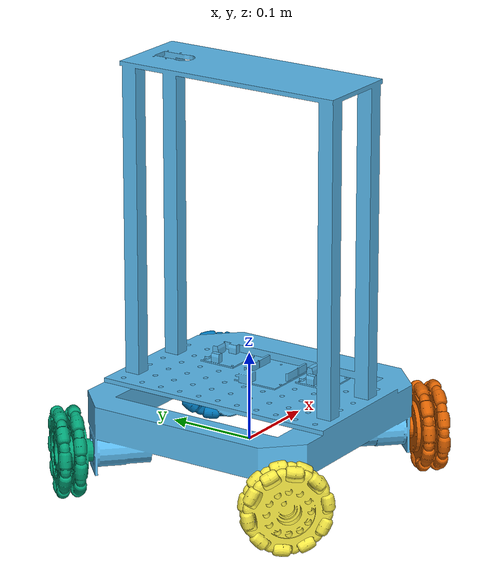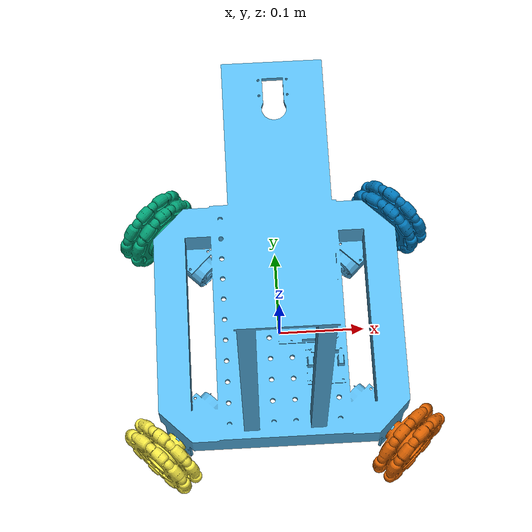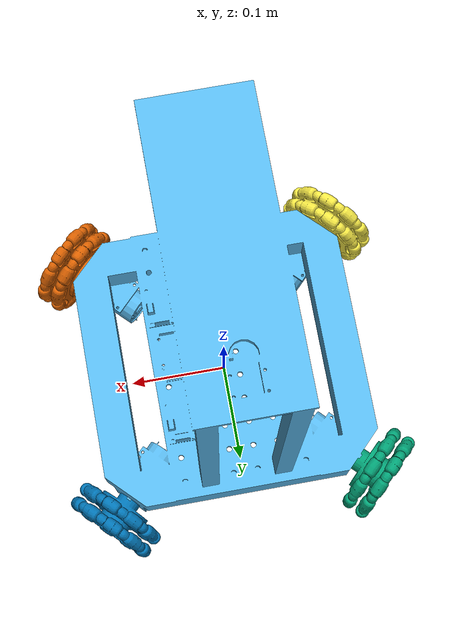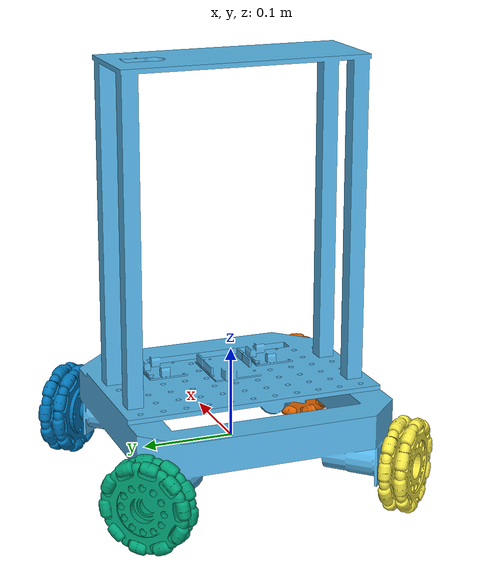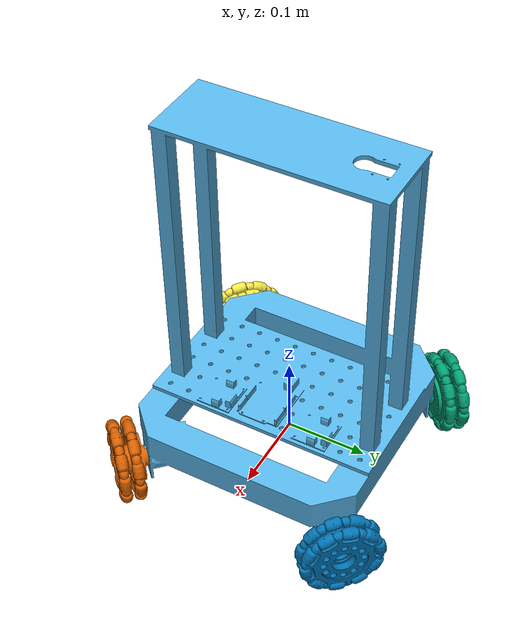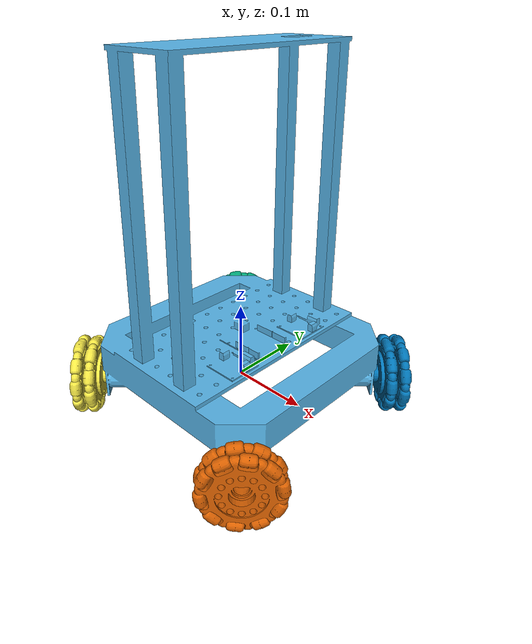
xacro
<?xml version='1.0'?>
<robot name="omnibot" xmlns:xacro="http://www.ros.org/wiki/xacro">

    <xacro:property name="PI" value="3.1415926535897931"/>

    <xacro:include filename="$(find omnibot_description)/models/omnibot/model.gazebo" />

    <!-- Joint to keep the robot up in midair -->

    <!-- Links -->
    <link name="base_link"/>
    <link name="body">
        <inertial>
            <mass value="8"/>
            <origin rpy="0 0 0" xyz="0 0 0"/>
            <inertia ixx="0.198" ixy="0" ixz="0" iyy="0.198" iyz="0" izz="0.13"/>
        </inertial>
        <collision name='collision'>
            <origin rpy="0 0 0" xyz="0 0 0.22"/>
            <geometry>
                <box size="0.25 0.25 0.40"/>
            </geometry>
        </collision>
        <visual name="visual">
            <origin rpy="0 0 0" xyz="0 0 0"/>
            <geometry>
                <mesh filename="package://omnibot_description/meshes/body.stl" scale="0.001 0.001 0.001"/>
            </geometry>
        </visual>
    </link>
    <link name="left_front_wheel">
        <inertial>
            <mass value="1"/>
            <origin rpy="0 1.57 0" xyz="0 0 0"/>
            <inertia ixx="0.075" ixy="0" ixz="0" iyy="0.075" iyz="0" izz="0.3"/>
        </inertial>
        <collision name='collision'>
            <origin rpy="0 1.57 0" xyz="0 0 0"/>
            <geometry>
                <cylinder radius="0.05" length="0.03" />
            </geometry>
        </collision>
        <visual name="visual">
            <origin rpy="0 0 0" xyz="0.05 0 0"/>
            <geometry>
                <mesh filename="package://omnibot_description/meshes/wheel.stl" scale="0.001 0.001 0.001"/>
            </geometry>
        </visual>
    </link>
    <link name="left_back_wheel">
        <inertial>
            <mass value="1"/>
            <origin rpy="0 1.57 0" xyz="0 0 0"/>
            <inertia ixx="0.075" ixy="0" ixz="0" iyy="0.075" iyz="0" izz="0.3"/>
        </inertial>
        <collision name='collision'>
            <origin rpy="0 1.57 0" xyz="0 0 0"/>
            <geometry>
                <cylinder radius="0.05" length="0.03" />
            </geometry>
        </collision>
        <visual name="visual">
            <origin rpy="0  0 0" xyz="0.05 0 0"/>
            <geometry>
                <mesh filename="package://omnibot_description/meshes/wheel.stl" scale="0.001 0.001 0.001"/>
            </geometry>
        </visual>
    </link>
    <link name="right_front_wheel">
        <inertial>
            <mass value="1"/>
            <origin rpy="0 1.57 0" xyz="0 0 0"/>
            <inertia ixx="0.075" ixy="0" ixz="0" iyy="0.075" iyz="0" izz="0.3"/>
        </inertial>
        <collision name='collision'>
            <origin rpy="0 1.57 0" xyz="0 0 0"/>
            <geometry>
                <cylinder radius="0.05" length="0.03" />
            </geometry>
        </collision>
        <visual name="visual">
            <origin rpy="0 0 0" xyz="0.05 0 0"/>
            <geometry>
                <mesh filename="package://omnibot_description/meshes/wheel.stl" scale="0.001 0.001 0.001"/>
            </geometry>
        </visual>
    </link>
    <link name="right_back_wheel">
        <inertial>
            <mass value="1"/>
            <origin rpy="0 1.57 0" xyz="0 0 0"/>
            <inertia ixx="0.075" ixy="0" ixz="0" iyy="0.075" iyz="0" izz="0.3"/>
        </inertial>
        <collision name='collision'>
            <origin rpy="0 1.57 0" xyz="0 0 0"/>
            <geometry>
                <cylinder radius="0.05" length="0.03" />
            </geometry>
        </collision>
        <visual name="visual">
            <origin rpy="0 0 0" xyz="0.05 0 0"/>
            <geometry>
                <mesh filename="package://omnibot_description/meshes/wheel.stl" scale="0.001 0.001 0.001"/>
            </geometry>
        </visual>
    </link>
    <link name="camera" />

    <!-- Joints -->
    <joint name="base_link_body" type="fixed">
        <parent link="base_link"/>
        <child link="body"/>
        <origin rpy="0 0 0" xyz="0 0 0"/>
        <axis xyz="1 0 0"/>
    </joint>
    <joint type="revolute" name="left_back_wheel_hinge">
        <child link="left_back_wheel"/>
        <parent link="body"/>
        <origin rpy="0 0 0.785398" xyz="-0.15 -0.15 0"/>
        <axis xyz="-1 0 0"/>
        <dynamics damping="0.0" friction="10.0" />
        <limit effort="1000"  lower="-1e10" upper="1e10" velocity="5"/>
    </joint>
    <joint type="revolute" name="right_front_wheel_hinge">
        <child link="right_front_wheel"/>
        <parent link="body"/>
        <origin rpy="0 0 3.92699" xyz="0.15 0.15 0"/>
        <axis xyz="1 0 0"/>
        <dynamics damping="0.0" friction="10.0" />
        <limit effort="1000"  lower="-1e10" upper="1e10" velocity="5"/>
    </joint>
    <joint type="revolute" name="right_back_wheel_hinge">
        <child link="right_back_wheel"/>
        <parent link="body"/>
        <origin rpy="0 0 2.35619" xyz="0.15 -0.15 0"/>
        <axis xyz="1 0 0"/>
        <dynamics damping="0.0" friction="10.0" />
        <limit effort="1000"  lower="-1e10" upper="1e10" velocity="5"/>
    </joint>
    <joint type="revolute" name="left_front_wheel_hinge">
        <child link="left_front_wheel"/>
        <parent link="body"/>
        <origin rpy="0 0 5.49779" xyz="-0.15 0.15 0"/>
        <axis xyz="-1 0 0"/>
        <dynamics damping="0.0" friction="10.0" />
        <limit effort="1000"  lower="-1e10" upper="1e10" velocity="5"/>
    </joint>
    <joint name="camera_joint" type="fixed">
        <parent link="base_link" />
        <child link="camera" />
        <origin rpy="0 0 1.57" xyz="0 0.12 0.45"/>
    </joint>

    <!-- Transmission -->
    <transmission name="left_front_wheel_hinge">
        <type>transmission_interface/SimpleTransmission</type>
        <joint name="left_front_wheel_hinge">
            <hardwareInterface>hardware_interface/EffortJointInterface</hardwareInterface>
        </joint>
        <actuator name="motor1">
            <hardwareInterface>hardware_interface/EffortJointInterface</hardwareInterface>
            <mechanicalReduction>1</mechanicalReduction>
        </actuator>
    </transmission>
    <transmission name="right_front_wheel_hinge">
        <type>transmission_interface/SimpleTransmission</type>
        <joint name="right_front_wheel_hinge">
            <hardwareInterface>hardware_interface/EffortJointInterface</hardwareInterface>
        </joint>
        <actuator name="motor2">
            <hardwareInterface>hardware_interface/EffortJointInterface</hardwareInterface>
            <mechanicalReduction>1</mechanicalReduction>
        </actuator>
    </transmission>
    <transmission name="left_back_wheel_hinge">
        <type>transmission_interface/SimpleTransmission</type>
        <joint name="left_back_wheel_hinge">
            <hardwareInterface>hardware_interface/EffortJointInterface</hardwareInterface>
        </joint>
        <actuator name="motor3">
            <hardwareInterface>hardware_interface/EffortJointInterface</hardwareInterface>
            <mechanicalReduction>1</mechanicalReduction>
        </actuator>
    </transmission>
    <transmission name="right_back_wheel_hinge">
        <type>transmission_interface/SimpleTransmission</type>
        <joint name="right_back_wheel_hinge">
            <hardwareInterface>hardware_interface/EffortJointInterface</hardwareInterface>
        </joint>
        <actuator name="motor4">
            <hardwareInterface>hardware_interface/EffortJointInterface</hardwareInterface>
            <mechanicalReduction>1</mechanicalReduction>
        </actuator>
    </transmission>

</robot>
